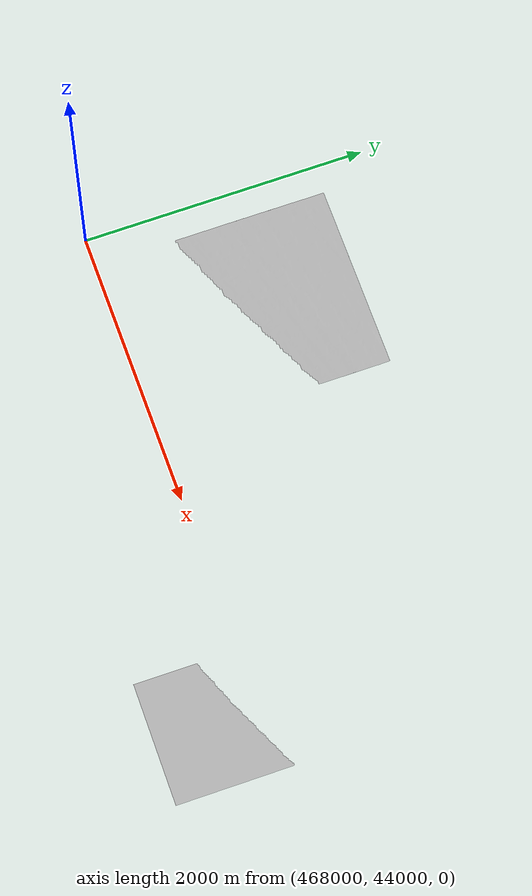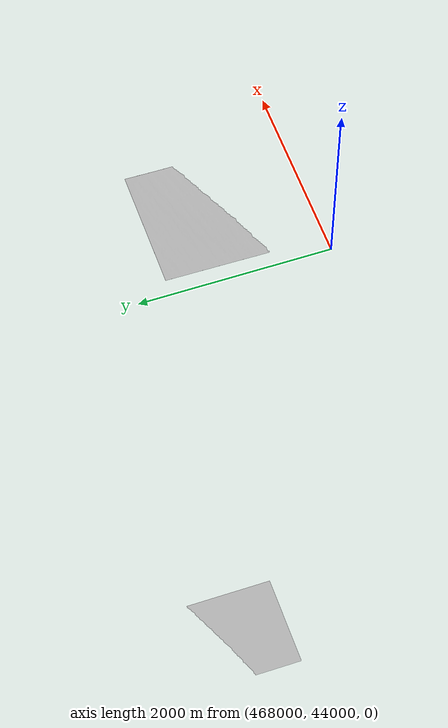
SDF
<?xml version="1.0" ?>
<sdf version="1.5">
  <model name="buzzbay.R_-70.880_-70.865_41.395_41.410">
    <static>true</static>
    <pose>0 0 0 0 0 0</pose>
    <self_collide>false</self_collide>
    <link name="terrain_link">
      <visual name="terrain_visual">
	<geometry>
	  <mesh>
	    <uri>model://buzzbay.R_-70.880_-70.865_41.395_41.410.epsg26987/meshes/buzzbay.R_-70.880_-70.865_41.395_41.410.epsg26987.obj</uri>
	    <scale>1 1 1</scale>
	  </mesh>
	</geometry>

	<material>
	  <script>
	    <uri>file://Media/materials/scripts/sand.material</uri>
	    <name>UUVSimulator/SandAndStones</name>
	  </script>
	</material>
      </visual>
      <collision name="collision">
	<geometry>
	  <mesh>
   	    <uri>model://buzzbay.R_-70.880_-70.865_41.395_41.410.epsg26987/meshes/buzzbay.R_-70.880_-70.865_41.395_41.410.epsg26987.obj</uri>
   	    <scale>1 1 1</scale>
	  </mesh>
	</geometry>
	<surface>
	  <contact>
            <collide_bitmask>0xffff</collide_bitmask>
	  </contact>
	</surface>
      </collision>
    </link>
  </model>
</sdf>
